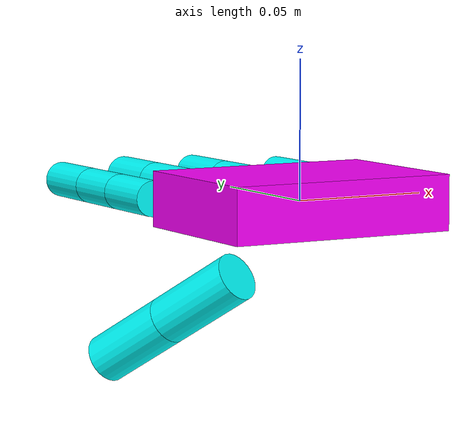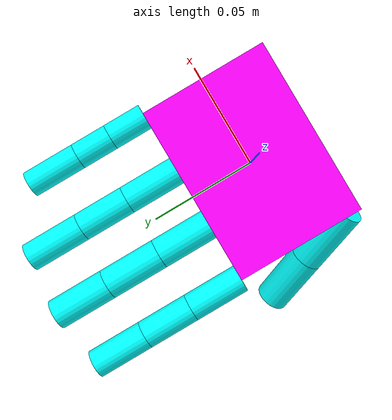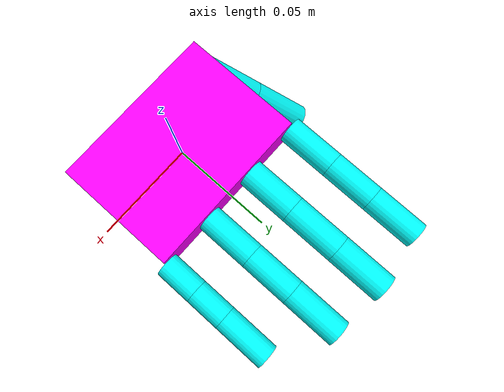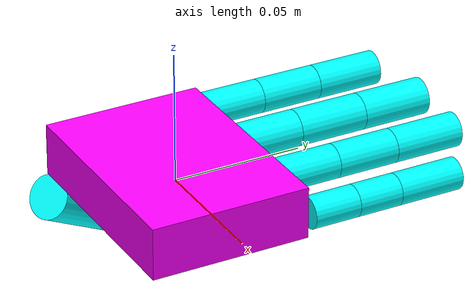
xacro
<?xml version="1.0"?>
<robot xmlns:xacro="http://wiki.ros.org/xacro" name="jaskier">

    <xacro:property name="base_x" value="0.085"/>
    <xacro:property name="base_y" value="0.061"/>
    <xacro:property name="base_z" value="0.02"/>
    <xacro:property name="base_xyz" value="${base_x} ${base_y} ${base_z}"/>

    <xacro:property name="thumb_proximal" value="0.034"/>
    <xacro:property name="thumb_distal" value="0.032"/>
    <xacro:property name="thumb_radius" value="0.0085"/>
    <xacro:property name="thumb_o_x" value="-${base_x/2}"/>
    <xacro:property name="thumb_o_y" value="-${base_y/2}"/>
    <xacro:property name="thumb_o_r" value="0.9"/>
    <xacro:property name="thumb_o_p" value="0.6"/>
    <xacro:property name="thumb_o_xyz" value="${thumb_o_x} ${thumb_o_y} -${base_z}"/>
    <xacro:property name="thumb_o_rpy" value="${thumb_o_r} ${thumb_o_p} 0"/>
    <xacro:macro name="thumb_o">
			<origin xyz="${thumb_o_xyz}" rpy="${thumb_o_rpy}"/>
    </xacro:macro>
	<xacro:macro name="thumb_distal_vis">
			<origin xyz="0 0 -${thumb_distal/2}" rpy="0 0 0"/>
	</xacro:macro>
	<xacro:macro name="thumb_proximal_vis">
			<origin xyz="0 0 -${thumb_proximal/2}" rpy="0 0 0"/>
    </xacro:macro>
	<xacro:macro name="thumb_col_o">
			<origin xyz="0 0 -${thumb_distal}" rpy="0 0 0"/>
	</xacro:macro>

    <xacro:property name="index_proximal" value="0.026"/>
    <xacro:property name="index_middle" value="0.024"/>
    <xacro:property name="index_distal" value="0.026"/>
    <xacro:property name="index_radius" value="0.0065"/>
    <xacro:property name="index_o_x" value="-${base_x/2}"/>
    <xacro:property name="index_o_y" value="${base_y/2}"/>
    <xacro:property name="index_o_r" value="${pi/2}"/>
    <xacro:property name="index_o_p" value="0"/>
    <xacro:property name="index_o_xyz" value="${index_o_x} ${index_o_y} 0"/>
    <xacro:property name="index_o_rpy" value="${index_o_r} ${index_o_p} 0"/>
    <xacro:macro name="index_o">
            <origin xyz="${index_o_xyz}" rpy="${index_o_rpy}"/>
    </xacro:macro>
	<xacro:macro name="index_distal_vis">
			<origin xyz="0 0 -${index_distal/2}" rpy="0 0 0"/>
	</xacro:macro>
	<xacro:macro name="index_middle_vis">
			<origin xyz="0 0 -${index_middle/2}" rpy="0 0 0"/>
	</xacro:macro>
	<xacro:macro name="index_proximal_vis">
			<origin xyz="0 0 -${index_proximal/2}" rpy="0 0 0"/>
    </xacro:macro>
	<xacro:macro name="index_col_o">
			<origin xyz="0 0 -${index_distal}" rpy="0 0 0"/>
	</xacro:macro>

    <xacro:property name="middle_proximal" value="0.026"/>
    <xacro:property name="middle_middle" value="0.027"/>
    <xacro:property name="middle_distal" value="0.027"/>
    <xacro:property name="middle_radius" value="0.007"/>
	<xacro:property name="middle_o_x" value="-${base_x/6}"/>
    <xacro:property name="middle_o_y" value="${base_y/2}"/>
    <xacro:property name="middle_o_r" value="${pi/2}"/>
    <xacro:property name="middle_o_p" value="0"/>
    <xacro:property name="middle_o_xyz" value="${middle_o_x} ${middle_o_y} 0"/>
    <xacro:property name="middle_o_rpy" value="${middle_o_r} ${middle_o_p} 0"/>
    <xacro:macro name="middle_o">
            <origin xyz="${middle_o_xyz}" rpy="${middle_o_rpy}"/>
    </xacro:macro>
	<xacro:macro name="middle_distal_vis">
			<origin xyz="0 0 -${middle_distal/2}" rpy="0 0 0"/>
	</xacro:macro>
	<xacro:macro name="middle_middle_vis">
			<origin xyz="0 0 -${middle_middle/2}" rpy="0 0 0"/>
	</xacro:macro>
	<xacro:macro name="middle_proximal_vis">
			<origin xyz="0 0 -${middle_proximal/2}" rpy="0 0 0"/>
    </xacro:macro>
	<xacro:macro name="middle_col_o">
			<origin xyz="0 0 -${middle_distal}" rpy="0 0 0"/>
	</xacro:macro>

    <xacro:property name="ring_proximal" value="0.026"/>
    <xacro:property name="ring_middle" value="0.024"/>
    <xacro:property name="ring_distal" value="0.027"/>
    <xacro:property name="ring_radius" value="0.0065"/>
    <xacro:property name="ring_o_x" value="${base_x/6}"/>
    <xacro:property name="ring_o_y" value="${base_y/2}"/>
    <xacro:property name="ring_o_r" value="${pi/2}"/>
    <xacro:property name="ring_o_p" value="0"/>
    <xacro:property name="ring_o_xyz" value="${ring_o_x} ${ring_o_y} 0"/>
    <xacro:property name="ring_o_rpy" value="${ring_o_r} ${ring_o_p} 0"/>
    <xacro:macro name="ring_o">
            <origin xyz="${ring_o_xyz}" rpy="${ring_o_rpy}"/>
    </xacro:macro>
	<xacro:macro name="ring_distal_vis">
			<origin xyz="0 0 -${ring_distal/2}" rpy="0 0 0"/>
	</xacro:macro>
	<xacro:macro name="ring_middle_vis">
			<origin xyz="0 0 -${ring_middle/2}" rpy="0 0 0"/>
	</xacro:macro>
	<xacro:macro name="ring_proximal_vis">
			<origin xyz="0 0 -${ring_proximal/2}" rpy="0 0 0"/>
    </xacro:macro>
	<xacro:macro name="ring_col_o">
			<origin xyz="0 0 -${ring_distal}" rpy="0 0 0"/>
	</xacro:macro>

    <xacro:property name="little_proximal" value="0.018"/>
    <xacro:property name="little_middle" value="0.017"/>
    <xacro:property name="little_distal" value="0.025"/>
    <xacro:property name="little_radius" value="0.006"/>
    <xacro:property name="little_o_x" value="${base_x/2}"/>
    <xacro:property name="little_o_y" value="${base_y/2}"/>
    <xacro:property name="little_o_r" value="${pi/2}"/>
    <xacro:property name="little_o_p" value="0"/>
    <xacro:property name="little_o_xyz" value="${little_o_x} ${little_o_y} 0"/>
    <xacro:property name="little_o_rpy" value="${little_o_r} ${little_o_p} 0"/>
    <xacro:macro name="little_o">
            <origin xyz="${little_o_xyz}" rpy="${little_o_rpy}"/>
    </xacro:macro>
	<xacro:macro name="little_distal_vis">
			<origin xyz="0 0 -${little_distal/2}" rpy="0 0 0"/>
	</xacro:macro>
	<xacro:macro name="little_middle_vis">
			<origin xyz="0 0 -${little_middle/2}" rpy="0 0 0"/>
	</xacro:macro>
	<xacro:macro name="little_proximal_vis">
			<origin xyz="0 0 -${little_proximal/2}" rpy="0 0 0"/>
    </xacro:macro>
	<xacro:macro name="little_col_o">
			<origin xyz="0 0 -${little_distal}" rpy="0 0 0"/>
	</xacro:macro>

    <xacro:macro name="cyan">
        <material name="cyan">
            <color rgba="0 1.0 1.0 1.0"/>
        </material>
    </xacro:macro>

    <xacro:macro name="joint_axis">
        <axis xyz="1 0 0"/>
    </xacro:macro>

    <xacro:macro name="joint_limit">
        <limit effort="0.0" velocity="20" lower="-1.8" upper="0"/>
    </xacro:macro>

    <xacro:macro name="prismatic_limit">
        <limit effort="0.0" velocity="20" lower="-20" upper="20"/>
    </xacro:macro>

    <link name="hand_link">
        <visual>
            <geometry>
                <box size="${base_x} ${base_y} ${base_z}"/>
            </geometry>
            <material name="Magenta">
                <color rgba="1.0 0 1.0 1.0"/>
            </material>
        </visual>
    </link>

    <link name="thumb_proximal">
        <visual>
            <geometry>
                <cylinder length="${thumb_proximal}" radius="${thumb_radius}"/>
            </geometry>
            <xacro:thumb_proximal_vis/>
            <xacro:cyan/>
        </visual>
    </link>

    <link name="thumb_distal">
        <visual>
            <geometry>
                <cylinder length="${thumb_distal}" radius="${thumb_radius}"/>
            </geometry>
            <xacro:thumb_distal_vis/>
            <xacro:cyan/>
        </visual>

        <collision>
            <geometry>
                <sphere radius="${thumb_radius}"/>
            </geometry>
            <xacro:thumb_col_o/>
        </collision>
    </link>

    <link name="index_proximal">
        <visual>
            <geometry>
                <cylinder length="${index_proximal}" radius="${index_radius}"/>
            </geometry>
            <xacro:index_proximal_vis/>
            <xacro:cyan/>
        </visual>
    </link>

    <link name="index_middle">
        <visual>
            <geometry>
                <cylinder length="${index_middle}" radius="${index_radius}"/>
            </geometry>
            <xacro:index_middle_vis/>
            <xacro:cyan/>
        </visual>
    </link>

    <link name="index_distal">
        <visual>
            <geometry>
                <cylinder length="${index_distal}" radius="${index_radius}"/>
            </geometry>
            <xacro:index_distal_vis/>
            <xacro:cyan/>
        </visual>

        <collision>
            <geometry>
                <sphere radius="${index_radius}"/>
            </geometry>
            <xacro:index_col_o/>
        </collision>
    </link>

    <link name="middle_proximal">
        <visual>
            <geometry>
                <cylinder length="${middle_proximal}" radius="${middle_radius}"/>
            </geometry>
            <xacro:middle_proximal_vis/>
            <xacro:cyan/>
        </visual>
    </link>

    <link name="middle_middle">
        <visual>
            <geometry>
                <cylinder length="${middle_middle}" radius="${middle_radius}"/>
            </geometry>
            <xacro:middle_middle_vis/>
            <xacro:cyan/>
        </visual>
    </link>

    <link name="middle_distal">
        <visual>
            <geometry>
                <cylinder length="${middle_distal}" radius="${middle_radius}"/>
            </geometry>
            <xacro:middle_distal_vis/>
            <xacro:cyan/>
        </visual>

        <collision>
            <geometry>
                <sphere radius="${middle_radius}"/>
            </geometry>
            <xacro:middle_col_o/>
        </collision>
    </link>

    <link name="ring_proximal">
        <visual>
            <geometry>
                <cylinder length="${ring_proximal}" radius="${ring_radius}"/>
            </geometry>
            <xacro:ring_proximal_vis/>
            <xacro:cyan/>
        </visual>
    </link>

    <link name="ring_middle">
        <visual>
            <geometry>
                <cylinder length="${ring_middle}" radius="${ring_radius}"/>
            </geometry>
            <xacro:ring_middle_vis/>
            <xacro:cyan/>
        </visual>
    </link>

    <link name="ring_distal">
        <visual>
            <geometry>
                <cylinder length="${ring_distal}" radius="${ring_radius}"/>
            </geometry>
            <xacro:ring_distal_vis/>
            <xacro:cyan/>
        </visual>

        <collision>
            <geometry>
                <sphere radius="${ring_radius}"/>
            </geometry>
            <xacro:ring_col_o/>
        </collision>
    </link>

    <link name="little_proximal">
        <visual>
            <geometry>
                <cylinder length="${little_proximal}" radius="${little_radius}"/>
            </geometry>
            <xacro:little_proximal_vis/>
            <xacro:cyan/>
        </visual>
    </link>

    <link name="little_middle">
        <visual>
            <geometry>
                <cylinder length="${little_middle}" radius="${little_radius}"/>
            </geometry>
            <xacro:little_middle_vis/>
            <xacro:cyan/>
        </visual>
    </link>

    <link name="little_distal">
        <visual>
            <geometry>
                <cylinder length="${little_distal}" radius="${little_radius}"/>
            </geometry>
            <xacro:little_distal_vis/>
            <xacro:cyan/>
        </visual>

        <collision>
            <geometry>
                <sphere radius="${little_radius}"/>
            </geometry>
            <xacro:little_col_o/>
        </collision>
    </link>

    <link name="imu_x_link"/>
    <link name="imu_y_link"/>
    <link name="imu_z_link"/>

    <link name="ultra_x_link"/>
    <link name="ultra_y_link"/>
    <link name="ultra_z_link"/>

    <link name="base_link"/>

    <joint name="imu_x" type="continuous">
        <parent link="imu_x_link"/>
        <child link="hand_link"/>
        <axis xyz="1 0 0"/>
    </joint>

    <joint name="imu_y" type="continuous">
        <parent link="imu_y_link"/>
        <child link="imu_x_link"/>
        <axis xyz="0 1 0"/>
    </joint>

    <joint name="imu_z" type="continuous">
        <parent link="imu_z_link"/>
        <child link="imu_y_link"/>
        <axis xyz="0 0 1"/>
    </joint>

    <joint name="ultra_x" type="prismatic">
        <parent link="ultra_x_link"/>
        <child link="imu_z_link"/>
        <axis xyz="1 0 0"/>
        <xacro:prismatic_limit/>
    </joint>

    <joint name="ultra_y" type="prismatic">
        <parent link="ultra_y_link"/>
        <child link="ultra_x_link"/>
        <axis xyz="0 1 0"/>
        <xacro:prismatic_limit/>
    </joint>

    <joint name="ultra_z" type="prismatic">
        <parent link="ultra_z_link"/>
        <child link="ultra_y_link"/>
        <axis xyz="0 0 1"/>
        <xacro:prismatic_limit/>
    </joint>

    <joint name="base_joint" type="fixed">
        <parent link="base_link"/>
        <child link="ultra_z_link"/>
    </joint>

    <joint name="thumb_mcp" type="revolute">
        <parent link="hand_link"/>
        <child link="thumb_proximal"/>
        <axis xyz="0 1 0"/>
        <xacro:joint_limit/>
        <xacro:thumb_o/>
    </joint>

    <joint name="thumb_ip" type="revolute">
        <parent link="thumb_proximal"/>
        <child link="thumb_distal"/>
        <axis xyz="0 1 0"/>
        <xacro:joint_limit/>
        <origin xyz="0 0 -${thumb_proximal}" rpy="0 0 0"/>
    </joint>

    <joint name="index_mcp" type="revolute">
        <parent link="hand_link"/>
        <child link="index_proximal"/>
        <xacro:joint_axis/>
        <xacro:joint_limit/>
        <xacro:index_o/>
    </joint>

    <joint name="index_pip" type="revolute">
        <parent link="index_proximal"/>
        <child link="index_middle"/>
        <xacro:joint_axis/>
        <xacro:joint_limit/>
        <origin xyz="0 0 -${index_proximal}" rpy="0 0 0"/>
    </joint>

    <joint name="index_dip" type="revolute">
        <parent link="index_middle"/>
        <child link="index_distal"/>
        <xacro:joint_axis/>
        <xacro:joint_limit/>
        <origin xyz="0 0 -${index_middle}" rpy="0 0 0"/>
    </joint>

    <joint name="middle_mcp" type="revolute">
        <parent link="hand_link"/>
        <child link="middle_proximal"/>
        <xacro:joint_axis/>
        <xacro:joint_limit/>
        <xacro:middle_o/>
    </joint>

    <joint name="middle_pip" type="revolute">
        <parent link="middle_proximal"/>
        <child link="middle_middle"/>
        <xacro:joint_axis/>
        <xacro:joint_limit/>
        <origin xyz="0 0 -${middle_proximal}" rpy="0 0 0"/>
    </joint>

    <joint name="middle_dip" type="revolute">
        <parent link="middle_middle"/>
        <child link="middle_distal"/>
        <xacro:joint_axis/>
        <xacro:joint_limit/>
        <origin xyz="0 0 -${middle_middle}" rpy="0 0 0"/>
    </joint>

    <joint name="ring_mcp" type="revolute">
        <parent link="hand_link"/>
        <child link="ring_proximal"/>
        <xacro:joint_axis/>
        <xacro:joint_limit/>
        <xacro:ring_o/>
    </joint>

    <joint name="ring_pip" type="revolute">
        <parent link="ring_proximal"/>
        <child link="ring_middle"/>
        <xacro:joint_axis/>
        <xacro:joint_limit/>
        <origin xyz="0 0 -${ring_proximal}" rpy="0 0 0"/>
    </joint>

    <joint name="ring_dip" type="revolute">
        <parent link="ring_middle"/>
        <child link="ring_distal"/>
        <xacro:joint_axis/>
        <xacro:joint_limit/>
        <origin xyz="0 0 -${ring_middle}" rpy="0 0 0"/>
    </joint>

    <joint name="little_mcp" type="revolute">
        <parent link="hand_link"/>
        <child link="little_proximal"/>
        <xacro:joint_axis/>
        <xacro:joint_limit/>
        <xacro:little_o/>
    </joint>

    <joint name="little_pip" type="revolute">
        <parent link="little_proximal"/>
        <child link="little_middle"/>
        <xacro:joint_axis/>
        <xacro:joint_limit/>
        <origin xyz="0 0 -${little_proximal}" rpy="0 0 0"/>
    </joint>

    <joint name="little_dip" type="revolute">
        <parent link="little_middle"/>
        <child link="little_distal"/>
        <xacro:joint_axis/>
        <xacro:joint_limit/>
        <origin xyz="0 0 -${little_middle}" rpy="0 0 0"/>
    </joint>

</robot>
